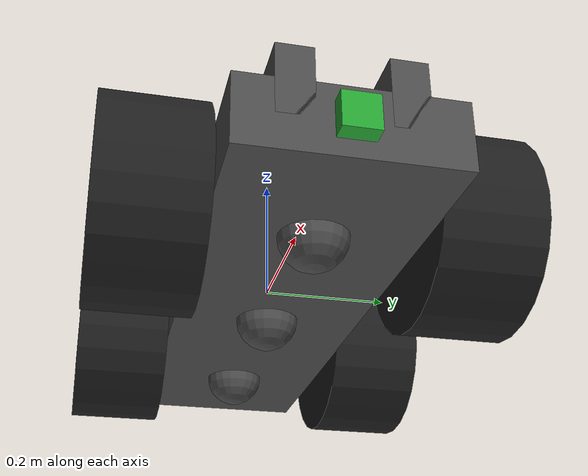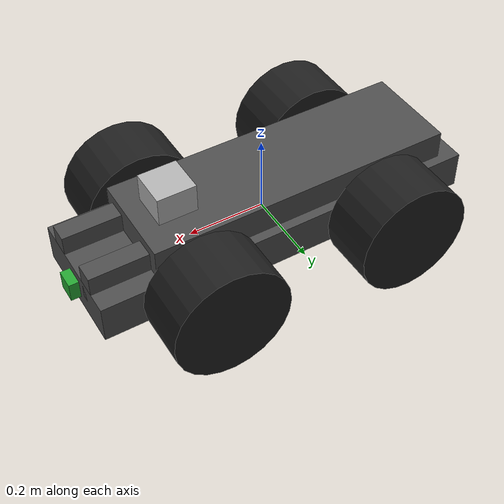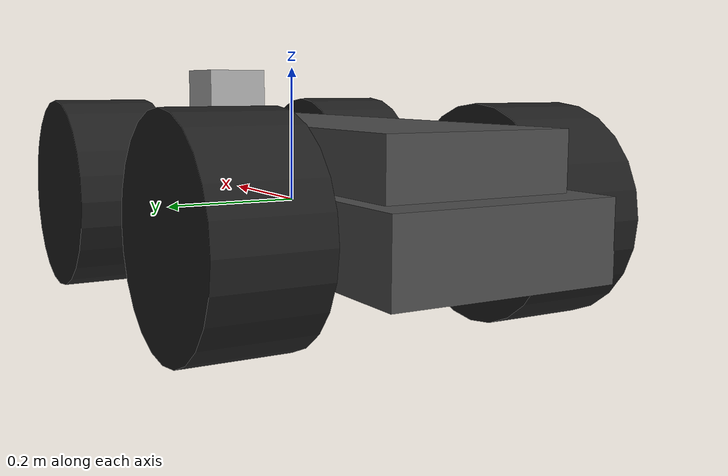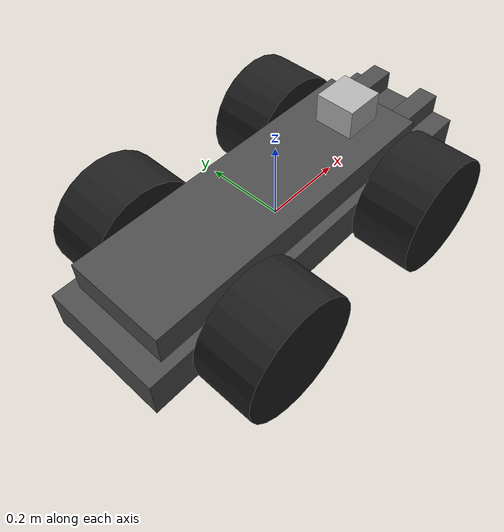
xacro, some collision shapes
<?xml version='1.0'?>

<robot name="automobile_bot" xmlns:xacro="http://www.ros.org/wiki/xacro">
  <xacro:include filename="$(find automobile_bot)/urdf/automobile_bot.gazebo" />
  <link name="robot_footprint"></link>

  <joint name="robot_footprint_joint" type="fixed">
    <origin xyz="0 0 0" rpy="0 0 0" />
    <parent link="robot_footprint"/>
    <child link="chassis" />
  </joint>

<gazebo reference = "chassis">
      <material>Gazebo/DarkGrey</material>
</gazebo>

<gazebo reference = "front_left_wheel">
      <material>Gazebo/FlatBlack</material>
</gazebo>

<gazebo reference = "front_right_wheel">
      <material>Gazebo/FlatBlack</material>
</gazebo>

<gazebo reference = "rear_left_wheel">
      <material>Gazebo/FlatBlack</material>
</gazebo>

<gazebo reference = "rear_right_wheel">
      <material>Gazebo/FlatBlack</material>
</gazebo>

<gazebo reference = "camera">
      <material>Gazebo/Green</material>
</gazebo>

  <link name='chassis'>
    <pose>0 0 0.1 0 0 0</pose>

    <inertial>
      <mass value="20.0"/>
      <origin xyz="0.0 0 0" rpy=" 0 0 0"/>
      <inertia
          ixx="0.1" ixy="0" ixz="0"
          iyy="0.1" iyz="0"
          izz="0.1"
      />
    </inertial>

    <collision name='chassis_collision'>
      <origin xyz="0 0 0" rpy=" 0 0 0"/>
      <geometry>
        <box size="1. .3 .1"/>
      </geometry>
    </collision>

    <visual name='chassis_visual'>
      <origin xyz="0 0 0" rpy=" 0 0 0"/>
      <geometry>
        <box size="1. .3 .1"/>
      </geometry>
    </visual>

    <collision>
      <origin xyz="-0.05 0 0.05" rpy=" 0 0 0"/>
      <geometry>
        <box size="0.8 .25 .15"/>
      </geometry>
    </collision>

    <visual>
      <origin xyz="-0.05 0 0.05" rpy=" 0 0 0"/>
      <geometry>
        <box size="0.8 .25 .15"/>
      </geometry>
    </visual>

    <collision>
      <origin xyz="0.425 0.0725 0.05" rpy=" 0 0 0"/>
      <geometry>
        <box size="0.15 .05 .1"/>
      </geometry>
      <material name="">
        <color rgba="1.0 0.0 0.0 1.0"/>
      </material>
    </collision>

    <visual>
      <origin xyz="0.425 0.0725 0.05" rpy=" 0 0 0"/>
      <geometry>
        <box size="0.15 .05 .1"/>
      </geometry>
    </visual>

    <collision>
      <origin xyz="0.425 -0.0725 0.05" rpy=" 0 0 0"/>
      <geometry>
        <box size="0.15 .05 .1"/>
      </geometry>
    </collision>

    <visual>
      <origin xyz="0.425 -0.0725 0.05" rpy=" 0 0 0"/>
      <geometry>
        <box size="0.15 .05 .1"/>
      </geometry>
    </visual>

    <collision>
      <origin xyz="-0.3 0 -0.05" rpy=" 0 0 0"/>
      <geometry>
        <sphere radius="0.0499"/>
      </geometry>
        <surface>
        <friction>
          <ode>
            <mu>0.1</mu>
            <mu2>0.1</mu2>
            <slip1>1.0</slip1>
            <slip2>1.0</slip2>
          </ode>
        </friction>
        </surface>
    </collision>

    <visual>
      <origin xyz="-0.3 0 -0.05" rpy=" 0 0 0"/>
      <geometry>
        <sphere radius="0.05"/>
      </geometry>
    </visual>

    <collision>
      <origin xyz="0 0 -0.05" rpy=" 0 0 0"/>
      <geometry>
        <sphere radius="0.0499"/>
      </geometry>
        <surface>
        <friction>
          <ode>
            <mu>0.1</mu>
            <mu2>0.1</mu2>
            <slip1>1.0</slip1>
            <slip2>1.0</slip2>
          </ode>
        </friction>
        </surface>
    </collision>

    <visual>
      <origin xyz="0 0 -0.05" rpy=" 0 0 0"/>
      <geometry>
        <sphere radius="0.05"/>
      </geometry>
    </visual>

    <collision>
      <origin xyz="0.3 0 -0.05" rpy=" 0 0 0"/>
      <geometry>
        <sphere radius="0.0499"/>
      </geometry>
        <surface>
        <friction>
          <ode>
            <mu>0.1</mu>
            <mu2>0.1</mu2>
            <slip1>1.0</slip1>
            <slip2>1.0</slip2>
          </ode>
        </friction>
        </surface>
    </collision>

    <visual>
      <origin xyz="0.3 0 -0.05" rpy=" 0 0 0"/>
      <geometry>
        <sphere radius="0.05"/>
      </geometry>
    </visual>
  </link>

 <link name="front_left_wheel">
    <inertial>
      <mass value="5.0"/>
      <origin xyz="0.0 0 0" rpy="0 1.5707 1.5707"/>
      <inertia
          ixx="0.1" ixy="0" ixz="0"
          iyy="0.1" iyz="0"
          izz="0.1"
      />
    </inertial>
    <visual name='front_left_wheel_visual'>
      <origin xyz="0 0 0" rpy="0 1.5707 1.5707"/>
      <geometry>
        <cylinder radius="0.15" length="0.15"/>
      </geometry>
    </visual>

    <collision name='front_left_wheel_collision'>
      <origin xyz="0 0 0" rpy="0 1.5707 1.5707" />
      <geometry>
        <cylinder radius="0.15" length="0.15"/>
      </geometry>

      <surface>
        <friction>
          <ode>
            <mu>0.1</mu>
            <mu2>0.1</mu2>
            <slip1>1.0</slip1>
            <slip2>1.0</slip2>
          </ode>
        </friction>
        <contact>
          <ode>
            <kp>1000000.0</kp>
            <kd>100.0</kd>
            <minDepth>0.00</minDepth>
          </ode>
        </contact>
      </surface>
    </collision>
  </link>

  <joint type="continuous" name="front_left_wheel_hinge">
    <origin xyz="0.25 0.225 0" rpy="0 0 0"/>
    <child link="front_left_wheel"/>
    <parent link="chassis"/>
    <axis xyz="0 1 0" rpy="0 0 0"/>
    <limit effort="10000" velocity="1000"/>
    <dynamics damping="1.0" friction="1.0"/>
  </joint>

  <link name="front_right_wheel">
    <inertial>
      <mass value="5.0"/>
      <origin xyz="0.0 0 0" rpy="0 1.5707 1.5707"/>
      <inertia
          ixx="0.1" ixy="0" ixz="0"
          iyy="0.1" iyz="0"
          izz="0.1"
      />
    </inertial>
    <visual name='front_right_wheel_visual'>
      <origin xyz="0 0 0" rpy="0 1.5707 1.5707"/>
      <geometry>
        <cylinder radius="0.15" length="0.15"/>
      </geometry>
    </visual>
    <collision name='front_right_wheel_collision'>
      <origin xyz="0 0 0" rpy="0 1.5707 1.5707" />
      <geometry>
        <cylinder radius="0.15" length="0.15"/>
      </geometry>
      <surface>
        <friction>
          <ode>
            <mu>0.1</mu>
            <mu2>0.1</mu2>
            <slip1>1.0</slip1>
            <slip2>1.0</slip2>
          </ode>
        </friction>
        <contact>
          <ode>
            <kp>1000000.0</kp>
            <kd>100.0</kd>
            <minDepth>0.00</minDepth>
          </ode>
        </contact>
      </surface>
    </collision>
  </link>

  <joint type="continuous" name="front_right_wheel_hinge">
    <origin xyz="0.25 -0.225 0" rpy="0 0 0"/>
    <child link="front_right_wheel"/>
    <parent link="chassis"/>
    <axis xyz="0 1 0" rpy="0 0 0"/>
    <limit effort="10000" velocity="1000"/>
    <dynamics damping="1.0" friction="1.0"/>
  </joint>

 <link name="rear_left_wheel">
    <inertial>
      <mass value="5.0"/>
      <origin xyz="0.0 0 0" rpy="0 1.5707 1.5707"/>
      <inertia
          ixx="0.1" ixy="0" ixz="0"
          iyy="0.1" iyz="0"
          izz="0.1"
      />
    </inertial>
    <visual name='rear_left_wheel_visual'>
      <origin xyz="0 0 0" rpy="0 1.5707 1.5707"/>
      <geometry>
        <cylinder radius="0.15" length="0.15"/>
      </geometry>
    </visual>

    <collision name='rear_left_wheel_collision'>
      <origin xyz="0 0 0" rpy="0 1.5707 1.5707" />
      <geometry>
        <cylinder radius="0.15" length="0.15"/>
      </geometry>
      <surface>
        <friction>
          <ode>
            <mu>0.1</mu>
            <mu2>0.1</mu2>
            <slip1>1.0</slip1>
            <slip2>1.0</slip2>
          </ode>
        </friction>
        <contact>
          <ode>
            <kp>1000000.0</kp>
            <kd>100.0</kd>
            <minDepth>0.00</minDepth>
          </ode>
        </contact>
      </surface>
    </collision>
  </link>

  <joint type="continuous" name="rear_left_wheel_hinge">
    <origin xyz="-0.25 0.225 0" rpy="0 0 0"/>
    <child link="rear_left_wheel"/>
    <parent link="chassis"/>
    <axis xyz="0 1 0" rpy="0 0 0"/>
    <limit effort="10000" velocity="1000"/>
    <dynamics damping="1.0" friction="1.0"/>
  </joint>

  <link name="rear_right_wheel">
    <inertial>
      <mass value="5.0"/>
      <origin xyz="0.0 0 0" rpy="0 1.5707 1.5707"/>
      <inertia
          ixx="0.1" ixy="0" ixz="0"
          iyy="0.1" iyz="0"
          izz="0.1"
      />
    </inertial>
    <visual name='rear_right_wheel_visual'>
      <origin xyz="0 0 0" rpy="0 1.5707 1.5707"/>
      <geometry>
        <cylinder radius="0.15" length="0.15"/>
      </geometry>
    </visual>
    <collision name='rear_right_wheel_collision'>
      <origin xyz="0 0 0" rpy="0 1.5707 1.5707" />
      <geometry>
        <cylinder radius="0.15" length="0.15"/>
      </geometry>
      <surface>
        <friction>
          <ode>
            <mu>0.1</mu>
            <mu2>0.1</mu2>
            <slip1>1.0</slip1>
            <slip2>1.0</slip2>
          </ode>
        </friction>
        <contact>
          <ode>
            <kp>1000000.0</kp>
            <kd>100.0</kd>
            <minDepth>0.00</minDepth>
          </ode>
        </contact>
      </surface>
    </collision>
  </link>

  <joint type="continuous" name="rear_right_wheel_hinge">
    <origin xyz="-0.25 -0.225 0" rpy="0 0 0"/>
    <child link="rear_right_wheel"/>
    <parent link="chassis"/>
    <axis xyz="0 1 0" rpy="0 0 0"/>
    <limit effort="10000" velocity="1000"/>
    <dynamics damping="1.0" friction="1.0"/>
  </joint>

  <link name="camera">
    <inertial>
      <mass value="0.1"/>
      <origin xyz="0 0 0" rpy="0 0 0"/>
      <inertia
          ixx="1e-6" ixy="0" ixz="0"
          iyy="1e-6" iyz="0"
          izz="1e-6"
      />
    </inertial>
    <visual name='camera_visual'>
      <origin xyz="0 0 0" rpy="0 0 0"/>
      <geometry>
        <box size="0.05 0.05 0.05"/>
      </geometry>
    </visual>
    <collision name='camera_collision'>
      <origin xyz="0 0 0" rpy="0 0 0" />
      <geometry>
        <box size="0.05 0.05 0.05"/>
      </geometry>
    </collision>
  </link>

  <joint type="fixed" name="camera_joint">
    <origin xyz="0.5 0 0" rpy="0 0 0"/>
    <child link="camera"/>
    <parent link="chassis"/>
    <axis xyz="0 1 0" rpy="0 0 0"/>
  </joint>

  <link name="hokuyo">
    <inertial>
      <mass value="1e-5"/>
      <origin xyz="0 0 0" rpy="0 0 0"/>
      <inertia
          ixx="1e-6" ixy="0" ixz="0"
          iyy="1e-6" iyz="0"
          izz="1e-6"
      />
    </inertial>
    <visual name='hokuyo_visual'>
      <origin xyz="0 0 0" rpy="0 0 0"/>
      <geometry>
        <mesh filename="package://automobile_bot/meshes/hokuyo.dae"/>
      </geometry>
    </visual>
    <collision name='hokuyo_collision'>
      <origin xyz="0 0 0" rpy="0 0 0" />
      <geometry>
        <box size="0.1 0.1 0.1"/>
      </geometry>
    </collision>
  </link>

  <joint type="fixed" name="hokuyo_joint">
    <origin xyz="0.25 0 0.15" rpy="0 0 0"/>
    <child link="hokuyo"/>
    <parent link="chassis"/>
    <axis xyz="0 1 0" rpy="0 0 0"/>
  </joint>

</robot>
